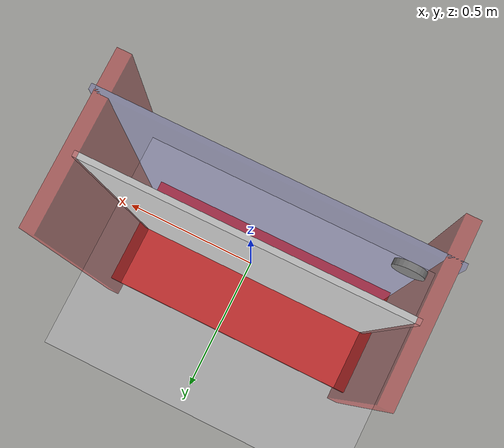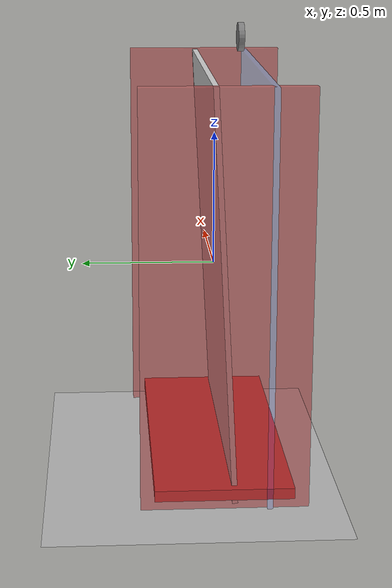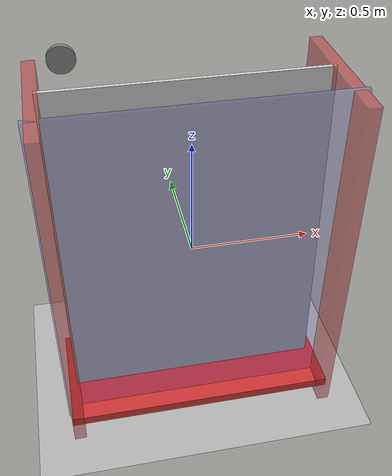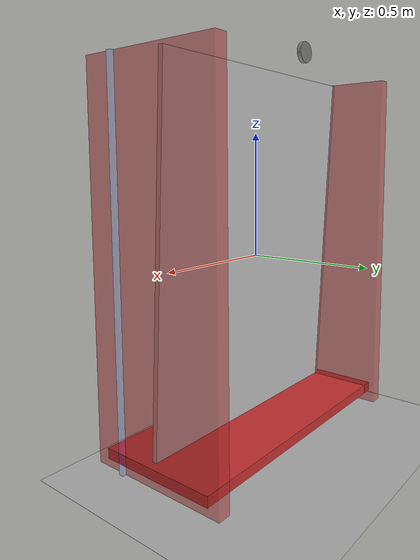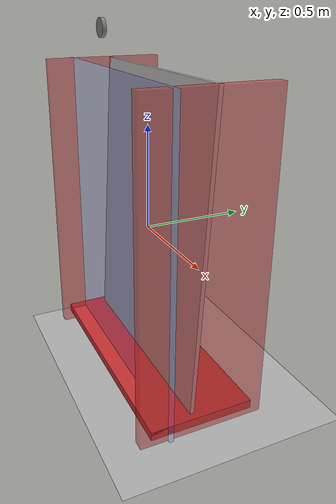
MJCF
<mujoco>
    <compiler angle="degree"/>
    <option gravity="0 0 -9.81" timestep="0.003" iterations="50" solver="Newton" jacobian="sparse" cone="elliptic" tolerance="1e-10"/>

    <default>
        <geom solimp=".9 .9 .01"/>
        <default class="peg">
            <geom mass="0.5" size="0.007 0.1" axisangle="1 0 0 87" type="cylinder" condim='1' rgba=".80 .20 .20 1"/>

        </default>

    </default>
    <asset>
        <texture type="skybox" builtin="gradient" width="128" height="128" rgb1=".4 .6 .8" rgb2="0 0 0"/>
        <texture name="texgeom" type="cube" builtin="flat" mark="cross" width="128" height="128"
            rgb1="0.6 0.6 0.6" rgb2="0.6 0.6 0.6" markrgb="1 1 1"/>
        <texture name="texplane" type="2d" builtin="checker" rgb1=".4 .4 .4" rgb2=".6 .6 .6"
            width="512" height="512"/>
        <material name='geom' texture="texgeom" texuniform="true"/>
        <material name='MatPlane' reflectance='0.3' texture="texplane" texrepeat="1 1" texuniform="true"/>
    </asset>

    <statistic extent="1"/>

    <worldbody>
        <geom pos="0 0 -.8" type="plane" size="3 3 .5" rgba=".7 .7 .7 1" material="MatPlane"/>

        <body name='plinko-token' pos='-.44 -.05 0.9'>

            <joint name="tokenx" type="slide" axis="1 0 0" limited="false" range="-.5 .5"/>
            <joint name="tokenz" type="slide" axis="0 0 1" limited="false" range="0 1"/>
            <joint name="tokenwy" type="hinge" axis="0 1 0" limited="false" range="0 1"/>

            <geom name='obj' type='cylinder' size='.048 .01' axisangle='1 0 0 90'/>
        </body>

        <body name="board" pos="0 0 0">

            <geom axisangle='1 0 0 -3' condim="3" size="0.55 0.01 0.75" rgba=".80 .80 .80 1" type="box"/>

            <body name="glass" pos="0 -.16 0">
                <geom size="0.6 0.01 0.75" rgba=".20 .20 .80 0.05" type="box" condim='3'/>
            </body>

            <!-- board -->
            <body name="base" pos="0 0 -0.7">
                <geom size="0.585 0.25 0.02" rgba=".80 .20 .20 1" type="box" condim='3'/>
            </body>

            <body name="left-base" pos="-0.56 0 0">
                <geom size="0.025 0.3 0.75" rgba=".80 .20 .20 0.5" type="box" condim='3'/>
            </body>

            <body name="right-base" pos="0.56 0 0">
                <geom size="0.025 0.3 0.75" rgba=".80 .20 .20 0.5" type="box" condim='3'/>
            </body>

        </body>
    </worldbody>
</mujoco>
